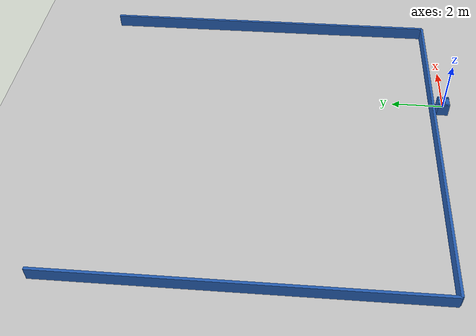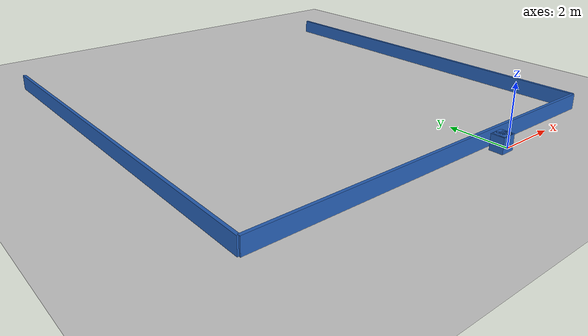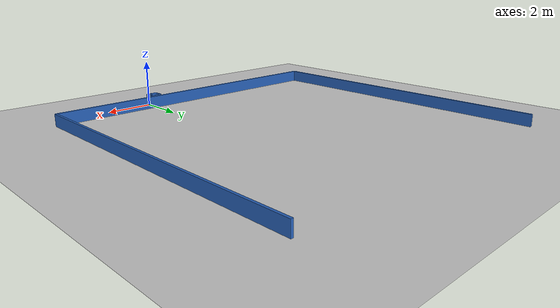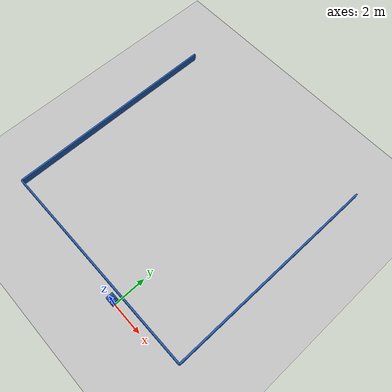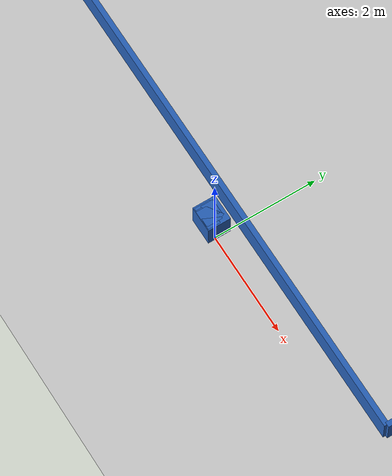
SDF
<?xml version="1.0" ?>
    <sdf version="1.5">
      <world name="default">
        <!-- A global light source -->
        <include>
          <uri>model://sun</uri>
        </include>
        <!-- A ground plane -->
        <include>
          <uri>model://ground_plane</uri>
        </include>

    <model name='libopen_space_final_T2B_96_80'>
      <static>1</static>
      <pose frame=''>-0.225000 0.075000 0.000000 0.000000 0.000000 0.000000</pose>
      <link name='link'>
        <inertial>
          <mass>1</mass>
          <inertia>
            <ixx>0.145833</ixx>
            <ixy>0</ixy>
            <ixz>0</ixz>
            <iyy>0.145833</iyy>
            <iyz>0</iyz>
            <izz>0.125</izz>
          </inertia>
        </inertial>
        <collision name='collision'>
          <geometry>
            <box>
              <size>0.31 0.43 1</size>
            </box>
          </geometry>
          <max_contacts>10</max_contacts>
          <surface>
            <contact>
              <ode/>
            </contact>
            <bounce/>
            <friction>
              <torsional>
                <ode/>
              </torsional>
              <ode/>
            </friction>
          </surface>
        </collision>
        <visual name='visual'>
          <geometry>
            <box>
              <size>0.31 0.43 1</size>
            </box>
          </geometry>
	    <material>
              <ambient>0.152000 0.379000 0.720000 1</ambient>
	      <diffuse>0.152000 0.379000 0.720000 1</diffuse>
          </material>
          <material>
            <script>
              <name>Gazebo/Grey</name>
              <uri>file://media/materials/scripts/gazebo.material</uri>
            </script>
          </material>
        </visual>
        <self_collide>0</self_collide>
        <kinematic>0</kinematic>
        <gravity>1</gravity>
      </link>
      <plugin name='libopen_space_final_T2B_96_80' filename='libopen_space_final_T2B_96_80.so'/>
    </model>

    <model name='libopen_space_final_T2B_126_78'>
      <static>1</static>
      <pose frame=''>-0.225000 0.075000 0.000000 0.000000 0.000000 0.000000</pose>
      <link name='link'>
        <inertial>
          <mass>1</mass>
          <inertia>
            <ixx>0.145833</ixx>
            <ixy>0</ixy>
            <ixz>0</ixz>
            <iyy>0.145833</iyy>
            <iyz>0</iyz>
            <izz>0.125</izz>
          </inertia>
        </inertial>
        <collision name='collision'>
          <geometry>
            <box>
              <size>0.35 0.40 1</size>
            </box>
          </geometry>
          <max_contacts>10</max_contacts>
          <surface>
            <contact>
              <ode/>
            </contact>
            <bounce/>
            <friction>
              <torsional>
                <ode/>
              </torsional>
              <ode/>
            </friction>
          </surface>
        </collision>
        <visual name='visual'>
          <geometry>
            <box>
              <size>0.35 0.40 1</size>
            </box>
          </geometry>
	    <material>
              <ambient>0.152000 0.379000 0.720000 1</ambient>
	      <diffuse>0.152000 0.379000 0.720000 1</diffuse>
          </material>
          <material>
            <script>
              <name>Gazebo/Grey</name>
              <uri>file://media/materials/scripts/gazebo.material</uri>
            </script>
          </material>
        </visual>
        <self_collide>0</self_collide>
        <kinematic>0</kinematic>
        <gravity>1</gravity>
      </link>
      <plugin name='libopen_space_final_T2B_126_78' filename='libopen_space_final_T2B_126_78.so'/>
    </model>

    <model name='libopen_space_final_T2B_147_27'>
      <static>1</static>
      <pose frame=''>-0.225000 0.075000 0.000000 0.000000 0.000000 0.000000</pose>
      <link name='link'>
        <inertial>
          <mass>1</mass>
          <inertia>
            <ixx>0.145833</ixx>
            <ixy>0</ixy>
            <ixz>0</ixz>
            <iyy>0.145833</iyy>
            <iyz>0</iyz>
            <izz>0.125</izz>
          </inertia>
        </inertial>
        <collision name='collision'>
          <geometry>
            <box>
              <size>0.18 0.19 1</size>
            </box>
          </geometry>
          <max_contacts>10</max_contacts>
          <surface>
            <contact>
              <ode/>
            </contact>
            <bounce/>
            <friction>
              <torsional>
                <ode/>
              </torsional>
              <ode/>
            </friction>
          </surface>
        </collision>
        <visual name='visual'>
          <geometry>
            <box>
              <size>0.18 0.19 1</size>
            </box>
          </geometry>
	    <material>
              <ambient>0.152000 0.379000 0.720000 1</ambient>
	      <diffuse>0.152000 0.379000 0.720000 1</diffuse>
          </material>
          <material>
            <script>
              <name>Gazebo/Grey</name>
              <uri>file://media/materials/scripts/gazebo.material</uri>
            </script>
          </material>
        </visual>
        <self_collide>0</self_collide>
        <kinematic>0</kinematic>
        <gravity>1</gravity>
      </link>
      <plugin name='libopen_space_final_T2B_147_27' filename='libopen_space_final_T2B_147_27.so'/>
    </model>

    <model name='libopen_space_final_T2B_91_29'>
      <static>1</static>
      <pose frame=''>-0.225000 0.075000 0.000000 0.000000 0.000000 0.000000</pose>
      <link name='link'>
        <inertial>
          <mass>1</mass>
          <inertia>
            <ixx>0.145833</ixx>
            <ixy>0</ixy>
            <ixz>0</ixz>
            <iyy>0.145833</iyy>
            <iyz>0</iyz>
            <izz>0.125</izz>
          </inertia>
        </inertial>
        <collision name='collision'>
          <geometry>
            <box>
              <size>0.38 0.40 1</size>
            </box>
          </geometry>
          <max_contacts>10</max_contacts>
          <surface>
            <contact>
              <ode/>
            </contact>
            <bounce/>
            <friction>
              <torsional>
                <ode/>
              </torsional>
              <ode/>
            </friction>
          </surface>
        </collision>
        <visual name='visual'>
          <geometry>
            <box>
              <size>0.38 0.40 1</size>
            </box>
          </geometry>
	    <material>
              <ambient>0.152000 0.379000 0.720000 1</ambient>
	      <diffuse>0.152000 0.379000 0.720000 1</diffuse>
          </material>
          <material>
            <script>
              <name>Gazebo/Grey</name>
              <uri>file://media/materials/scripts/gazebo.material</uri>
            </script>
          </material>
        </visual>
        <self_collide>0</self_collide>
        <kinematic>0</kinematic>
        <gravity>1</gravity>
      </link>
      <plugin name='libopen_space_final_T2B_91_29' filename='libopen_space_final_T2B_91_29.so'/>
    </model>

    <model name='libopen_space_final_T2B_100_36'>
      <static>1</static>
      <pose frame=''>-0.225000 0.075000 0.000000 0.000000 0.000000 0.000000</pose>
      <link name='link'>
        <inertial>
          <mass>1</mass>
          <inertia>
            <ixx>0.145833</ixx>
            <ixy>0</ixy>
            <ixz>0</ixz>
            <iyy>0.145833</iyy>
            <iyz>0</iyz>
            <izz>0.125</izz>
          </inertia>
        </inertial>
        <collision name='collision'>
          <geometry>
            <box>
              <size>0.41 0.30 1</size>
            </box>
          </geometry>
          <max_contacts>10</max_contacts>
          <surface>
            <contact>
              <ode/>
            </contact>
            <bounce/>
            <friction>
              <torsional>
                <ode/>
              </torsional>
              <ode/>
            </friction>
          </surface>
        </collision>
        <visual name='visual'>
          <geometry>
            <box>
              <size>0.41 0.30 1</size>
            </box>
          </geometry>
	    <material>
              <ambient>0.152000 0.379000 0.720000 1</ambient>
	      <diffuse>0.152000 0.379000 0.720000 1</diffuse>
          </material>
          <material>
            <script>
              <name>Gazebo/Grey</name>
              <uri>file://media/materials/scripts/gazebo.material</uri>
            </script>
          </material>
        </visual>
        <self_collide>0</self_collide>
        <kinematic>0</kinematic>
        <gravity>1</gravity>
      </link>
      <plugin name='libopen_space_final_T2B_100_36' filename='libopen_space_final_T2B_100_36.so'/>
    </model>

    <model name='libopen_space_final_T2B_80_26'>
      <static>1</static>
      <pose frame=''>-0.225000 0.075000 0.000000 0.000000 0.000000 0.000000</pose>
      <link name='link'>
        <inertial>
          <mass>1</mass>
          <inertia>
            <ixx>0.145833</ixx>
            <ixy>0</ixy>
            <ixz>0</ixz>
            <iyy>0.145833</iyy>
            <iyz>0</iyz>
            <izz>0.125</izz>
          </inertia>
        </inertial>
        <collision name='collision'>
          <geometry>
            <box>
              <size>0.14 0.23 1</size>
            </box>
          </geometry>
          <max_contacts>10</max_contacts>
          <surface>
            <contact>
              <ode/>
            </contact>
            <bounce/>
            <friction>
              <torsional>
                <ode/>
              </torsional>
              <ode/>
            </friction>
          </surface>
        </collision>
        <visual name='visual'>
          <geometry>
            <box>
              <size>0.14 0.23 1</size>
            </box>
          </geometry>
	    <material>
              <ambient>0.152000 0.379000 0.720000 1</ambient>
	      <diffuse>0.152000 0.379000 0.720000 1</diffuse>
          </material>
          <material>
            <script>
              <name>Gazebo/Grey</name>
              <uri>file://media/materials/scripts/gazebo.material</uri>
            </script>
          </material>
        </visual>
        <self_collide>0</self_collide>
        <kinematic>0</kinematic>
        <gravity>1</gravity>
      </link>
      <plugin name='libopen_space_final_T2B_80_26' filename='libopen_space_final_T2B_80_26.so'/>
    </model>

    <model name='libopen_space_final_T2B_111_12'>
      <static>1</static>
      <pose frame=''>-0.225000 0.075000 0.000000 0.000000 0.000000 0.000000</pose>
      <link name='link'>
        <inertial>
          <mass>1</mass>
          <inertia>
            <ixx>0.145833</ixx>
            <ixy>0</ixy>
            <ixz>0</ixz>
            <iyy>0.145833</iyy>
            <iyz>0</iyz>
            <izz>0.125</izz>
          </inertia>
        </inertial>
        <collision name='collision'>
          <geometry>
            <box>
              <size>0.50 0.44 1</size>
            </box>
          </geometry>
          <max_contacts>10</max_contacts>
          <surface>
            <contact>
              <ode/>
            </contact>
            <bounce/>
            <friction>
              <torsional>
                <ode/>
              </torsional>
              <ode/>
            </friction>
          </surface>
        </collision>
        <visual name='visual'>
          <geometry>
            <box>
              <size>0.50 0.44 1</size>
            </box>
          </geometry>
	    <material>
              <ambient>0.152000 0.379000 0.720000 1</ambient>
	      <diffuse>0.152000 0.379000 0.720000 1</diffuse>
          </material>
          <material>
            <script>
              <name>Gazebo/Grey</name>
              <uri>file://media/materials/scripts/gazebo.material</uri>
            </script>
          </material>
        </visual>
        <self_collide>0</self_collide>
        <kinematic>0</kinematic>
        <gravity>1</gravity>
      </link>
      <plugin name='libopen_space_final_T2B_111_12' filename='libopen_space_final_T2B_111_12.so'/>
    </model>

    <model name='libopen_space_final_T2B_125_67'>
      <static>1</static>
      <pose frame=''>-0.225000 0.075000 0.000000 0.000000 0.000000 0.000000</pose>
      <link name='link'>
        <inertial>
          <mass>1</mass>
          <inertia>
            <ixx>0.145833</ixx>
            <ixy>0</ixy>
            <ixz>0</ixz>
            <iyy>0.145833</iyy>
            <iyz>0</iyz>
            <izz>0.125</izz>
          </inertia>
        </inertial>
        <collision name='collision'>
          <geometry>
            <box>
              <size>0.26 0.37 1</size>
            </box>
          </geometry>
          <max_contacts>10</max_contacts>
          <surface>
            <contact>
              <ode/>
            </contact>
            <bounce/>
            <friction>
              <torsional>
                <ode/>
              </torsional>
              <ode/>
            </friction>
          </surface>
        </collision>
        <visual name='visual'>
          <geometry>
            <box>
              <size>0.26 0.37 1</size>
            </box>
          </geometry>
	    <material>
              <ambient>0.152000 0.379000 0.720000 1</ambient>
	      <diffuse>0.152000 0.379000 0.720000 1</diffuse>
          </material>
          <material>
            <script>
              <name>Gazebo/Grey</name>
              <uri>file://media/materials/scripts/gazebo.material</uri>
            </script>
          </material>
        </visual>
        <self_collide>0</self_collide>
        <kinematic>0</kinematic>
        <gravity>1</gravity>
      </link>
      <plugin name='libopen_space_final_T2B_125_67' filename='libopen_space_final_T2B_125_67.so'/>
    </model>

    <model name='libopen_space_final_T2B_87_56'>
      <static>1</static>
      <pose frame=''>-0.225000 0.075000 0.000000 0.000000 0.000000 0.000000</pose>
      <link name='link'>
        <inertial>
          <mass>1</mass>
          <inertia>
            <ixx>0.145833</ixx>
            <ixy>0</ixy>
            <ixz>0</ixz>
            <iyy>0.145833</iyy>
            <iyz>0</iyz>
            <izz>0.125</izz>
          </inertia>
        </inertial>
        <collision name='collision'>
          <geometry>
            <box>
              <size>0.17 0.32 1</size>
            </box>
          </geometry>
          <max_contacts>10</max_contacts>
          <surface>
            <contact>
              <ode/>
            </contact>
            <bounce/>
            <friction>
              <torsional>
                <ode/>
              </torsional>
              <ode/>
            </friction>
          </surface>
        </collision>
        <visual name='visual'>
          <geometry>
            <box>
              <size>0.17 0.32 1</size>
            </box>
          </geometry>
	    <material>
              <ambient>0.152000 0.379000 0.720000 1</ambient>
	      <diffuse>0.152000 0.379000 0.720000 1</diffuse>
          </material>
          <material>
            <script>
              <name>Gazebo/Grey</name>
              <uri>file://media/materials/scripts/gazebo.material</uri>
            </script>
          </material>
        </visual>
        <self_collide>0</self_collide>
        <kinematic>0</kinematic>
        <gravity>1</gravity>
      </link>
      <plugin name='libopen_space_final_T2B_87_56' filename='libopen_space_final_T2B_87_56.so'/>
    </model>

    <model name='libopen_space_final_T2B_118_50'>
      <static>1</static>
      <pose frame=''>-0.225000 0.075000 0.000000 0.000000 0.000000 0.000000</pose>
      <link name='link'>
        <inertial>
          <mass>1</mass>
          <inertia>
            <ixx>0.145833</ixx>
            <ixy>0</ixy>
            <ixz>0</ixz>
            <iyy>0.145833</iyy>
            <iyz>0</iyz>
            <izz>0.125</izz>
          </inertia>
        </inertial>
        <collision name='collision'>
          <geometry>
            <box>
              <size>0.45 0.41 1</size>
            </box>
          </geometry>
          <max_contacts>10</max_contacts>
          <surface>
            <contact>
              <ode/>
            </contact>
            <bounce/>
            <friction>
              <torsional>
                <ode/>
              </torsional>
              <ode/>
            </friction>
          </surface>
        </collision>
        <visual name='visual'>
          <geometry>
            <box>
              <size>0.45 0.41 1</size>
            </box>
          </geometry>
	    <material>
              <ambient>0.152000 0.379000 0.720000 1</ambient>
	      <diffuse>0.152000 0.379000 0.720000 1</diffuse>
          </material>
          <material>
            <script>
              <name>Gazebo/Grey</name>
              <uri>file://media/materials/scripts/gazebo.material</uri>
            </script>
          </material>
        </visual>
        <self_collide>0</self_collide>
        <kinematic>0</kinematic>
        <gravity>1</gravity>
      </link>
      <plugin name='libopen_space_final_T2B_118_50' filename='libopen_space_final_T2B_118_50.so'/>
    </model>

    <model name='libopen_space_final_T2B_120_45'>
      <static>1</static>
      <pose frame=''>-0.225000 0.075000 0.000000 0.000000 0.000000 0.000000</pose>
      <link name='link'>
        <inertial>
          <mass>1</mass>
          <inertia>
            <ixx>0.145833</ixx>
            <ixy>0</ixy>
            <ixz>0</ixz>
            <iyy>0.145833</iyy>
            <iyz>0</iyz>
            <izz>0.125</izz>
          </inertia>
        </inertial>
        <collision name='collision'>
          <geometry>
            <box>
              <size>0.25 0.15 1</size>
            </box>
          </geometry>
          <max_contacts>10</max_contacts>
          <surface>
            <contact>
              <ode/>
            </contact>
            <bounce/>
            <friction>
              <torsional>
                <ode/>
              </torsional>
              <ode/>
            </friction>
          </surface>
        </collision>
        <visual name='visual'>
          <geometry>
            <box>
              <size>0.25 0.15 1</size>
            </box>
          </geometry>
	    <material>
              <ambient>0.152000 0.379000 0.720000 1</ambient>
	      <diffuse>0.152000 0.379000 0.720000 1</diffuse>
          </material>
          <material>
            <script>
              <name>Gazebo/Grey</name>
              <uri>file://media/materials/scripts/gazebo.material</uri>
            </script>
          </material>
        </visual>
        <self_collide>0</self_collide>
        <kinematic>0</kinematic>
        <gravity>1</gravity>
      </link>
      <plugin name='libopen_space_final_T2B_120_45' filename='libopen_space_final_T2B_120_45.so'/>
    </model>

        <model name='bottom_wall'>
          <static>1</static>
          <pose frame=''>-2.25 0.5 0.000000 0.000000 0.000000 1.57079632</pose>
          <link name='link'>
            <inertial>
            <mass>1</mass>
            <inertia>
              <ixx>0.145833</ixx>
              <ixy>0</ixy>
              <ixz>0</ixz>
              <iyy>0.145833</iyy>
              <iyz>0</iyz>
              <izz>0.125</izz>
            </inertia>
            </inertial>
            <collision name='collision'>
            <geometry>
              <box>
              <size>0.1 13.5 1</size>
              </box>
            </geometry>
            <max_contacts>10</max_contacts>
            <surface>
              <contact>
              <ode/>
              </contact>
              <bounce/>
              <friction>
              <torsional>
                <ode/>
              </torsional>
              <ode/>
              </friction>
            </surface>
            </collision>
            <visual name='visual'>
            <geometry>
              <box>
              <size>0.1 13.5 1</size>
              </box>
            </geometry>
            <material>
              <ambient>0.152000 0.379000 0.720000 1</ambient>
            <diffuse>0.152000 0.379000 0.720000 1</diffuse>
            </material>
            <material>
              <script>
              <name>Gazebo/Grey</name>
              <uri>file://media/materials/scripts/gazebo.material</uri>
              </script>
            </material>
            </visual>
            <self_collide>0</self_collide>
            <kinematic>0</kinematic>
            <gravity>1</gravity>
          </link>
        </model>

        <model name='left_wall'>
          <static>1</static>
          <pose frame=''>-9 7.25 0.000000 0.000000 0.000000 0.000000</pose>
          <link name='link'>
            <inertial>
            <mass>1</mass>
            <inertia>
              <ixx>0.145833</ixx>
              <ixy>0</ixy>
              <ixz>0</ixz>
              <iyy>0.145833</iyy>
              <iyz>0</iyz>
              <izz>0.125</izz>
            </inertia>
            </inertial>
            <collision name='collision'>
            <geometry>
              <box>
              <size>0.1 13.5 1</size>
              </box>
            </geometry>
            <max_contacts>10</max_contacts>
            <surface>
              <contact>
              <ode/>
              </contact>
              <bounce/>
              <friction>
              <torsional>
                <ode/>
              </torsional>
              <ode/>
              </friction>
            </surface>
            </collision>
            <visual name='visual'>
            <geometry>
              <box>
              <size>0.1 13.5 1</size>
              </box>
            </geometry>
            <material>
              <ambient>0.152000 0.379000 0.720000 1</ambient>
            <diffuse>0.152000 0.379000 0.720000 1</diffuse>
            </material>
            <material>
              <script>
              <name>Gazebo/Grey</name>
              <uri>file://media/materials/scripts/gazebo.material</uri>
              </script>
            </material>
            </visual>
            <self_collide>0</self_collide>
            <kinematic>0</kinematic>
            <gravity>1</gravity>
          </link>
        </model>

        <model name='right_wall'>
          <static>1</static>
          <pose frame=''>4.5 7.25 0.000000 0.000000 0.000000 0.000000</pose>
          <link name='link'>
            <inertial>
            <mass>1</mass>
            <inertia>
              <ixx>0.145833</ixx>
              <ixy>0</ixy>
              <ixz>0</ixz>
              <iyy>0.145833</iyy>
              <iyz>0</iyz>
              <izz>0.125</izz>
            </inertia>
            </inertial>
            <collision name='collision'>
            <geometry>
              <box>
              <size>0.1 13.5 1</size>
              </box>
            </geometry>
            <max_contacts>10</max_contacts>
            <surface>
              <contact>
              <ode/>
              </contact>
              <bounce/>
              <friction>
              <torsional>
                <ode/>
              </torsional>
              <ode/>
              </friction>
            </surface>
            </collision>
            <visual name='visual'>
            <geometry>
              <box>
              <size>0.1 13.5 1</size>
              </box>
            </geometry>
            <material>
              <ambient>0.152000 0.379000 0.720000 1</ambient>
            <diffuse>0.152000 0.379000 0.720000 1</diffuse>
            </material>
            <material>
              <script>
              <name>Gazebo/Grey</name>
              <uri>file://media/materials/scripts/gazebo.material</uri>
              </script>
            </material>
            </visual>
            <self_collide>0</self_collide>
            <kinematic>0</kinematic>
            <gravity>1</gravity>
          </link>
        </model>

      </world>
    </sdf>"
